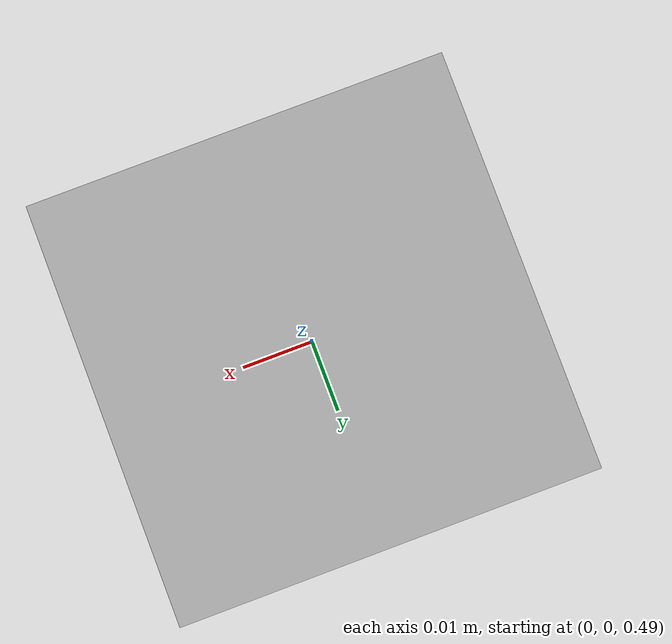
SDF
<?xml version="1.0" ?>
<sdf version="1.5">
  <world name="default">
    <!-- A global light source -->
    <include>
      <uri>model://sun</uri>
    </include>
    <!-- A ground plane -->
    <include>
      <uri>model://ground_plane</uri>
    </include>
    <include>
      <uri>model://camera_static</uri>
      <pose>0 0 0.5 0 1.57 0</pose>
    </include>
    <include>
      <uri>model://chessboard</uri>
      <pose>0 0 0.01 0 0 0</pose>
    </include>
    <include>
      <uri>model://asphalt_plane</uri>
    </include>
  </world>
</sdf>

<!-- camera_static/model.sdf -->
<sdf version="1.4">
  <model name="camera_static">
    <link name="link">
      <inertial>
        <pose>0.01 0.025 0.025 0 -0 0</pose>
        <mass>0.01</mass>
        <inertia>
          <ixx>4.15e-6</ixx>
          <ixy>0</ixy>
          <ixz>0</ixz>
          <iyy>2.407e-6</iyy>
          <iyz>0</iyz>
          <izz>2.407e-6</izz>
        </inertia>
      </inertial>
      <visual name="visual">
        <geometry>
          <box>
            <size>0.02 0.05 0.05</size>
          </box>
        </geometry>
      </visual>
      <sensor name="camera1" type="camera">
        <camera>
          <horizontal_fov>0.84479790990252</horizontal_fov>
          <image>
            <width>240</width>
            <height>240</height>
          </image>
          <clip>
            <near>0.01</near>
            <far>100</far>
          </clip>
          <noise>
            <type>gaussian</type>
            <mean>0.1</mean>
            <stddev>0.01</stddev>
          </noise>
        </camera>
    <plugin name="camera_controller" filename="libgazebo_ros_camera.so">
        <alwaysOn>true</alwaysOn>
        <updateRate>2.0</updateRate>
        <cameraName>camera1</cameraName>
        <imageTopicName>image_raw</imageTopicName>
        <cameraInfoTopicName>camera_info</cameraInfoTopicName>
        <frameName>camera_link</frameName>
        <hackBaseline>0.07</hackBaseline>
        <distortionK1>0.0</distortionK1>
        <distortionK2>0.0</distortionK2>
        <distortionK3>0.0</distortionK3>
        <distortionT1>0.0</distortionT1>
        <distortionT2>0.0</distortionT2>
      </plugin>
      </sensor>
      <gravity>0</gravity>
    </link>
  </model>
</sdf>

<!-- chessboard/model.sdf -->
<sdf version='1.4'>
	<model name="chessboard">
		<static>false</static>
		<link name='link'>
			<inertial>
				<mass>0.1</mass>
				<inertia>
					<ixx>0.00004</ixx>
					<ixy>0.0</ixy>
					<ixz>0.0</ixz>
					<iyy>0.00004</iyy>
					<iyz>0.0</iyz>
					<izz>0.00004</izz>
				</inertia>
			</inertial>
			<visual name='visual'>
				<geometry>
					<box>
						<size>0.279 0.215 0.001</size>
					</box>
				</geometry>
				<material>
					<script>
						<uri>model://chessboard/materials/scripts</uri>
						<uri>model://chessboard/materials/textures</uri>
						<name>chessboard/Diffuse</name>
					</script>
				</material>
			</visual>
			<collision name ='collision'>
				<geometry>
					<box>
						<size>0.279 0.215 0.001</size>
					</box>
				</geometry>
			</collision>
		</link>
	</model>
</sdf>
